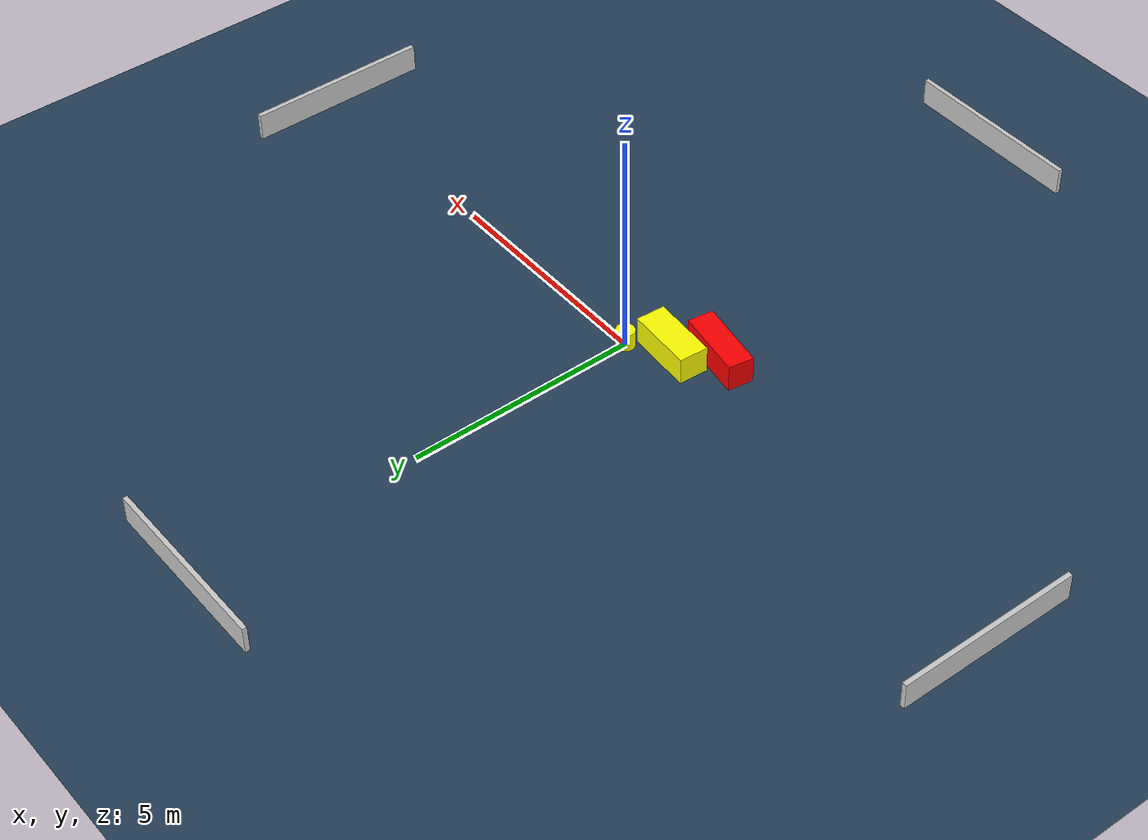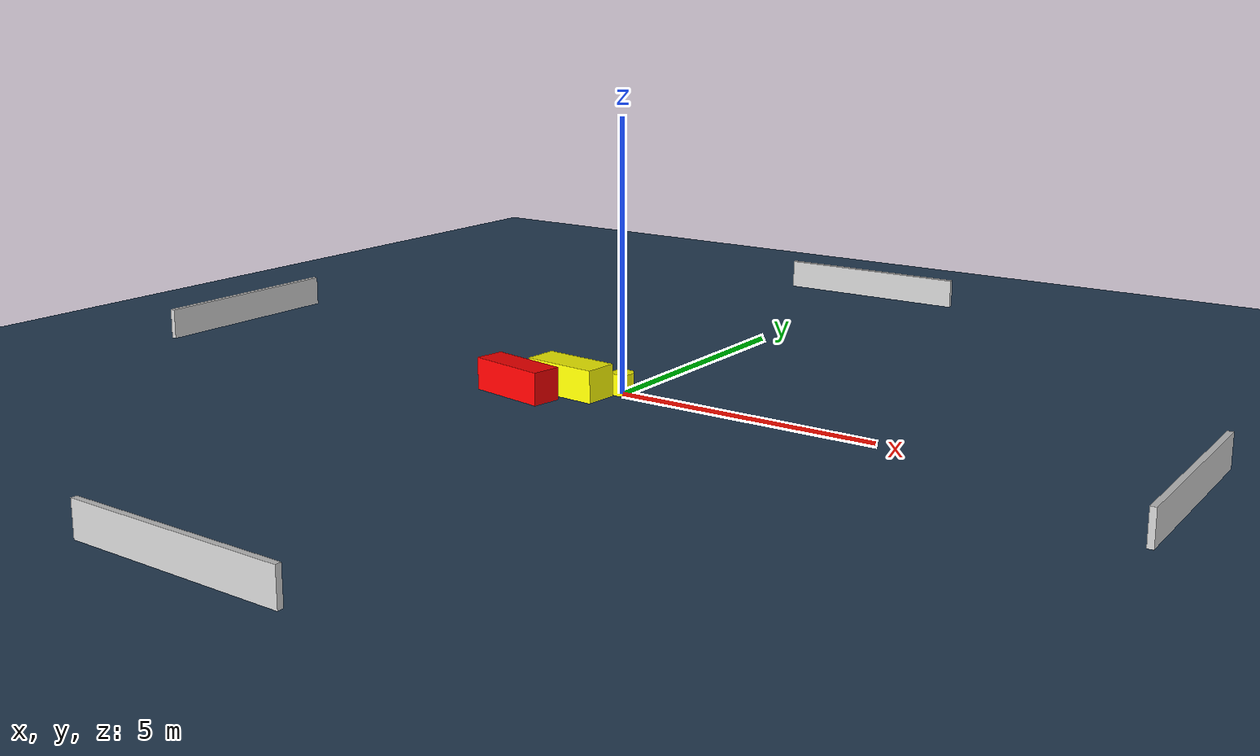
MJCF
<?xml version="1.0" ?>
<mujoco model="generated_environment">
  <option timestep="0.01" integrator="RK4" cone="elliptic"/>
  <default>
    <geom density="1"/>
  </default>
  <asset>
    <texture builtin="gradient" height="3072" name="skybox" rgb1="0.3 0.5 0.7" rgb2="0 0 0" type="skybox" width="512"/>
    <texture builtin="checker" height="300" name="groundplane" rgb1="0.2 0.3 0.4" rgb2="0.1 0.2 0.3" type="2d" width="300"/>
    <material name="groundplane" reflectance="0.2" texrepeat="5 5" texture="groundplane"/>
  </asset>
  <worldbody>
    <light dir="0 0 -1" directional="true" pos="0 0 1.5"/>
    <geom condim="3" friction="0.5 0.005 0.001" material="groundplane" name="floor" pos="0 0 0" size="0 0 0.05" type="plane"/>
    <body name="walls">
      <geom name="wall_1" condim="4" pos="-10.0 0.0 0.3" rgba="0.800000011920929 0.800000011920929 0.800000011920929 1.0" size="0.05 2.0 0.3" type="box"/>
      <geom name="wall_2" condim="4" pos="10.0 0.0 0.3" rgba="0.800000011920929 0.800000011920929 0.800000011920929 1.0" size="0.05 2.0 0.3" type="box"/>
      <geom name="wall_3" condim="4" pos="0.0 -10.0 0.3" rgba="0.800000011920929 0.800000011920929 0.800000011920929 1.0" size="2.0 0.05 0.3" type="box"/>
      <geom name="wall_4" condim="4" pos="0.0 10.0 0.3" rgba="0.800000011920929 0.800000011920929 0.800000011920929 1.0" size="2.0 0.05 0.3" type="box"/>
    </body>
    <body name="robot">
      <joint name="joint_x" type="slide" pos="0 0 0" axis="1 0 0"/>
      <joint name="joint_y" type="slide" pos="0 0 0" axis="0 1 0"/>
      <geom name="robot" type="cylinder" pos="0.0 0.0 0.2" size="0.2 0.2 0.0" mass="5.0" friction="1.0 0.005 0.0001" condim="4" rgba="1.0 1.0 0.0 1.0"/>
    </body>
    <body name="obstacle_1_movable">
      <geom name="obstacle_1_movable" condim="4" pos="-0.8122696311153085 -0.5050285776408878 0.3" euler="0 0 266.0274763802725" friction="0.0 0.005 0.001" rgba="1.0 1.0 0.0 1.0" size="0.316347817321176 0.7274559752554874 0.3" type="box" mass="0.1"/>
      <joint type="free"/>
    </body>
    <body name="obstacle_2_static">
      <geom name="obstacle_2_static" condim="4" pos="-1.5293478156243663 -1.1313109000188393 0.3" euler="0 0 350.44732473490467" friction="0.0 0.005 0.001" rgba="1.0 0.0 0.0 1.0" size="0.7727937799527753 0.278136988040155 0.3" type="box"/>
    </body>
  </worldbody>
  <actuator>
    <motor name="actuator_x" joint="joint_x" gear="1" ctrlrange="-1 1"/>
    <motor name="actuator_y" joint="joint_y" gear="1" ctrlrange="-1 1"/>
  </actuator>
</mujoco>
